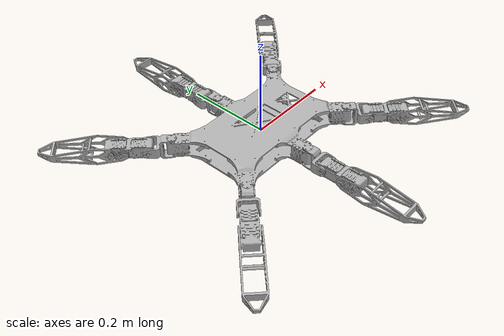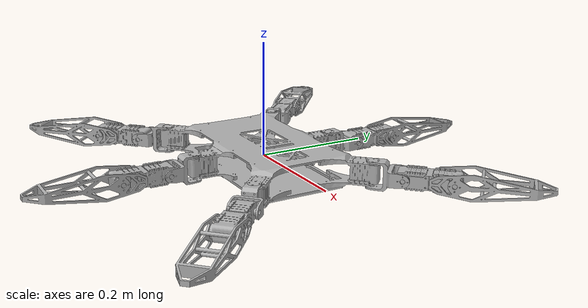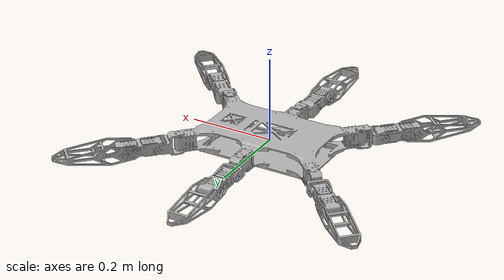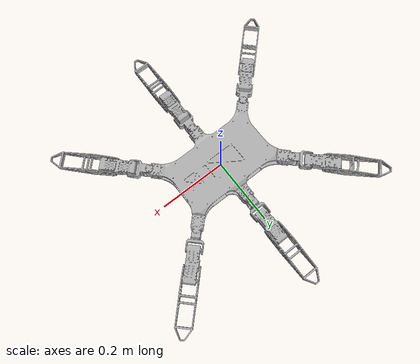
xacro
<?xml version="1.0" ?>
<robot name="spider" xmlns:xacro="http://ros.org/wiki/xacro">
  <xacro:arg name="initial_positions_file" default="initial_positions.yaml" />
  <xacro:arg name="path_meshes" default="file://$(find spider_description)/meshes" />
  <xacro:arg name="format_meshes_stl" default="False" />

  <xacro:include filename="$(find spider_description)/urdf/spider_macro.xacro" />
  <xacro:spider_macro path_meshes="$(arg path_meshes)" format_meshes_stl="$(arg format_meshes_stl)"/>

  <xacro:include filename="$(find spider_description)/urdf/spider.ros2_control.xacro" />
  <xacro:spider_ros2_control name="SpiderHardwareInterface" initial_positions_file="$(arg initial_positions_file)"/>

</robot>

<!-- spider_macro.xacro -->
<robot xmlns:xacro="http://ros.org/wiki/xacro" name="spider">
<xacro:macro name="spider_macro" params="path_meshes format_meshes_stl">

    <xacro:property name="format_meshes_stl_" value="${format_meshes_stl}"/>

    <xacro:if value="${format_meshes_stl_}">
        <xacro:property name="format" value=".STL"/>
    </xacro:if>
    <xacro:unless value="${format_meshes_stl_}">
        <xacro:property name="format" value=".dae"/>
    </xacro:unless>

    <!-- Link properties -->
    <xacro:property name="body_length_x" value="0.3556"/>
    <xacro:property name="body_length_y" value="0.165"/>
    <xacro:property name="coxa_length" value="0.052"/>
    <xacro:property name="femur_length" value="0.082"/>
    <xacro:property name="tibia_length" value="0.155"/>
    <xacro:property name="tarsus_length" value="0.0"/>

    <!-- Joint properties -->
    <xacro:property name="joint_lower_limit" value="-2.00"/>
    <xacro:property name="joint_upper_limit" value="2.00"/>
    <xacro:property name="joint_effort" value="0.8"/>
    <xacro:property name="joint_velocity" value="0.524"/>

    <!-- Link 0 -->
    <link name="base_link"/>

    <joint name="base_joint" type="fixed">
        <parent link="base_link"/>
        <child link="body_link"/>
        <origin xyz="0.0 0.0 0.0" rpy="0.0 0.0 0.0"/>
    </joint>

    <!-- Link Body -->
    <link name="body_link">
        <visual>
            <origin xyz="0.0 0.0 0.0" rpy="0.0 0.0 0.0"/>
            <geometry>
                <mesh filename="${path_meshes}/base_link${format}" />
            </geometry>
            <material name="">
                <color rgba="0.7 0.7 0.7 1"/>
            </material>
        </visual>
        <collision>
            <origin xyz="0.0 0.0 0.0" rpy="0.0 0.0 0.0"/>
            <geometry>
                <mesh filename="${path_meshes}/base_link${format}" />
            </geometry>
            <material name="">
                <color rgba="0.7 0.7 0.7 1"/>
            </material>
        </collision>
        <inertial>
        <origin
            xyz="-0.000530634264644336 -0.000146735871100936 0.002797336519253"
            rpy="0 0 0" />
        <mass
            value="0.611606451626775" />
        <inertia
            ixx="0.00454780272495035"
            ixy="-5.85469596986661E-07"
            ixz="5.809136780602E-06"
            iyy="0.00784053245943273"
            iyz="1.609753583614E-06"
            izz="0.0121391274208026" />
        </inertial>
    </link>

    <!-- Leg macro -->
    <xacro:macro name="leg" params="side position x y angle axis_coxa axis_femur axis_tibia mass">

        <!-- leg position -->
        <joint name="leg_center_joint_${side}${position}" type="fixed">
            <origin xyz="${x} ${y} 0.0" rpy="0.0 0.0 0.0"/>
            <parent link="body_link"/>
            <child link="leg_center_${side}${position}"/>
        </joint>
        <link name="leg_center_${side}${position}">
            <inertial>
                <origin xyz="0.0 0.0 0.0" rpy="0.0 0.0 0.0" />
                <mass value="0.00001"/>
                <inertia
                    ixx="1.0" ixy="0.0"  ixz="0.0"
                    iyy="1.0" iyz="0.0"
                    izz="1.0" />
            </inertial>
        </link>

        <!-- coxa -->
       <joint name="joint_coxa_${side}${position}" type="revolute">
           <origin xyz="0.0 0.0 0.0" rpy="0.0 0.0 ${angle}"/>
           <parent link="leg_center_${side}${position}"/>
           <child link="link_coxa_${side}${position}"/>
           <axis xyz="0.0 0.0 ${axis_coxa}"/>
           <limit lower="${joint_lower_limit}" upper="${joint_upper_limit}" effort="${joint_effort}" velocity="${joint_velocity}"/>
       </joint>

       <link name="link_coxa_${side}${position}">
           <visual>
               <origin xyz="0.0 0.0 0.0" rpy="0.0 0.0 0.0"/>
               <geometry>
                    <mesh filename="${path_meshes}/coxa_link${format}" />
               </geometry>
               <material name="">
                   <color rgba="0.7 0.7 0.7 1"/>
               </material>
           </visual>
           <collision>
               <origin xyz="0.0 0.0 0.0" rpy="0.0 0.0 0.0" />
               <geometry>
                   <mesh filename="${path_meshes}/coxa_link${format}" />
               </geometry>
               <material name="">
                   <color rgba="0.7 0.7 0.7 1" />
               </material>
           </collision>
           <inertial>
           <origin
                   xyz="0.0259999991636717 5.48568285269058E-07 -5.52350892489561E-07"
                   rpy="0 0 0" />
                 <mass
                   value="${mass}" />
                 <inertia
                   ixx="7.12966880670217E-06"
                   ixy="-4.04797875390301E-11"
                   ixz="-4.20782143594676E-11"
                   iyy="7.05736504437165E-06"
                   iyz="-7.44539286286323E-15"
                   izz="7.05736451070854E-06" />
           </inertial>
       </link>

        <!-- femur -->
        <joint name="joint_femur_${side}${position}" type="revolute">
            <origin xyz="${coxa_length} 0.0 0.0" rpy="${pi/2} 0 0.0"/>
            <parent link="link_coxa_${side}${position}"/>
            <child link="link_femur_${side}${position}"/>
            <axis xyz="0.0 0.0 ${axis_femur}"/>
            <limit lower="${joint_lower_limit}" upper="${joint_upper_limit}" effort="${joint_effort}" velocity="${joint_velocity}"/>
        </joint>

        <link name="link_femur_${side}${position}">
            <visual>
                <origin xyz="0.0 0.0 0.0" rpy="0.0 0.0 0.0"/>
                <geometry>
                    <mesh filename="${path_meshes}/2${format}" />
                </geometry>
                <material name="">
                    <color rgba="0.7 0.7 0.7 1"/>
                </material>
            </visual>
            <collision>
                <origin xyz="0.0 0.0 0.0" rpy="0.0 0.0 0.0" />
                <geometry>
                    <mesh filename="${path_meshes}/2${format}" />
                </geometry>
                <material name="">
                    <color rgba="0.7 0.7 0.7 1" />
                </material>
            </collision>
            <inertial>
            <origin
                xyz="0.040999769634667 -4.30568319366442E-08 0.000754475780533559"
                rpy="0 0 0" />
            <mass
                value="0.0953381260317791" />
            <inertia
                ixx="1.58226170549124E-05"
                ixy="7.18370173005665E-09"
                ixz="2.44292687080875E-07"
                iyy="9.74932250427542E-05"
                iyz="-1.77284495331422E-11"
                izz="9.24662892423645E-05" />
            </inertial>
        </link>

        <!-- tibia -->
        <joint name="joint_tibia_${side}${position}" type="revolute">
          <origin xyz="${femur_length} 0.0  0.0" rpy="0.0 0.0 0.0"/>
          <parent link="link_femur_${side}${position}"/>
          <child link="link_tibia_${side}${position}"/>
          <axis xyz="0.0 0.0 ${axis_tibia}"/>
          <limit lower="${joint_lower_limit}" upper="${joint_upper_limit}" effort="${joint_effort}" velocity="${joint_velocity}"/>
        </joint>

        <link name="link_tibia_${side}${position}">
            <visual>
                <origin xyz="0.0 0.0 0.0" rpy="0.0 0.0 0.0"/>
                <geometry>
                    <mesh filename="${path_meshes}/tibia_link${format}" />
                </geometry>
                <material name="">
                    <color rgba="0.7 0.7 0.7 1"/>
                </material>
            </visual>
            <collision>
                <origin xyz="0.0 0.0 0.0" rpy="0.0 0.0 0.0" />
                <geometry>
                    <mesh filename="${path_meshes}/tibia_link${format}" />
                </geometry>
                <material name="">
                    <color rgba="0.7 0.7 0.7 1" />
                </material>
            </collision>
            <inertial>
            <origin
                xyz="0.0582130928710533 -4.8413205307532E-07 -0.000309754397326167"
                rpy="0 0 0" />
            <mass
                value="0.0274685501932791" />
            <inertia
                ixx="1.3790756851875E-05"
                ixy="1.86386884764665E-09"
                ixz="-2.70792447948708E-09"
                iyy="8.67578889959408E-05"
                iyz="1.52160816187718E-13"
                izz="7.87024641434495E-05" />
            </inertial>
        </link>

        <!-- foot -->
        <joint name="foot_joint_${side}${position}" type="fixed">
            <origin xyz="${tibia_length} 0.0 0.0" rpy="0.0 0.0 0.0" />
            <parent link="link_tibia_${side}${position}" />
            <child link="foot_${side}${position}" />
        </joint>
        <link name="foot_${side}${position}">
            <inertial>
                <origin xyz="0.0 0.0 0.0" rpy="0.0 0.0 0.0" />
                <mass value="0.00000001"/>
                <inertia
                    ixx="0.01E-020" ixy="0.0"  ixz="0.0"
                    iyy="0.01E-020" iyz="0.0"
                    izz="0.01E-020" />
            </inertial>
        </link>
    </xacro:macro>

<xacro:leg side="r" position="r" x="-0.170" y="-0.110" angle="-${pi*3/4}" axis_femur="1" axis_tibia="1" axis_coxa="1" mass="0.0207333939617734"/>
<xacro:leg side="r" position="m" x="0.0" y="-0.1325" angle="-${pi/2}" axis_femur="1" axis_tibia="1" axis_coxa="1" mass="0.0207333939617734"/>
<xacro:leg side="r" position="f" x="0.170" y="-0.110" angle="-${pi/4}" axis_femur="1" axis_tibia="1" axis_coxa="1" mass="0.04073339396177341"/>

<xacro:leg side="l" position="r" x="-0.170" y="0.110" angle="${pi*3/4}" axis_femur="1" axis_tibia="1" axis_coxa="1" mass="0.0207333939617734"/>
<xacro:leg side="l" position="m" x="0.0" y="0.1325" angle="${pi/2}" axis_femur="1" axis_tibia="1" axis_coxa="1" mass="0.0207333939617734"/>
<xacro:leg side="l" position="f" x="0.170" y="0.110" angle="${pi/4}" axis_femur="1" axis_tibia="1" axis_coxa="1" mass="0.04073339396177341"/>

</xacro:macro>
</robot>
